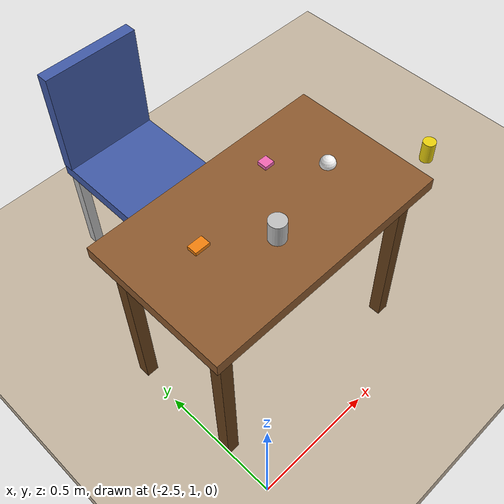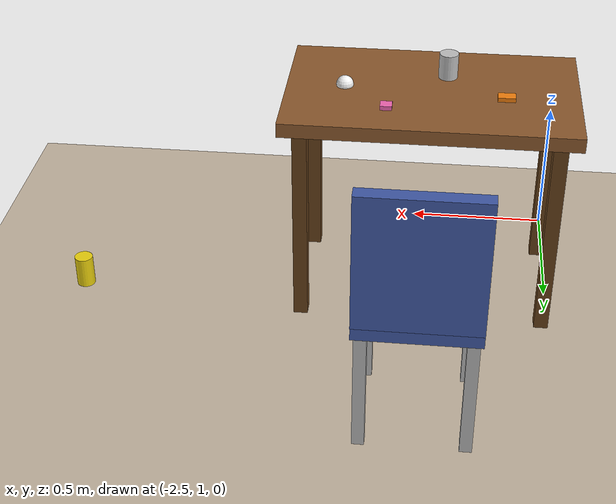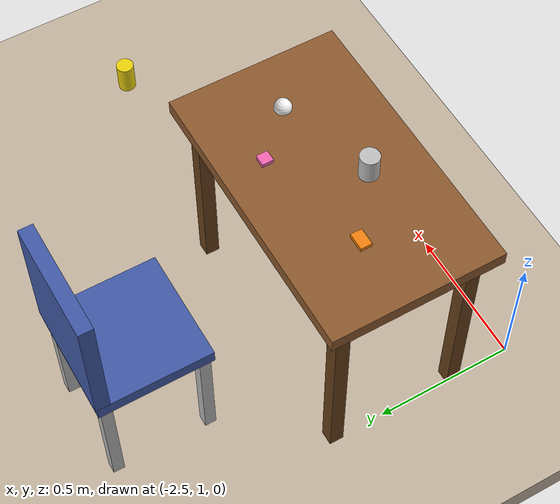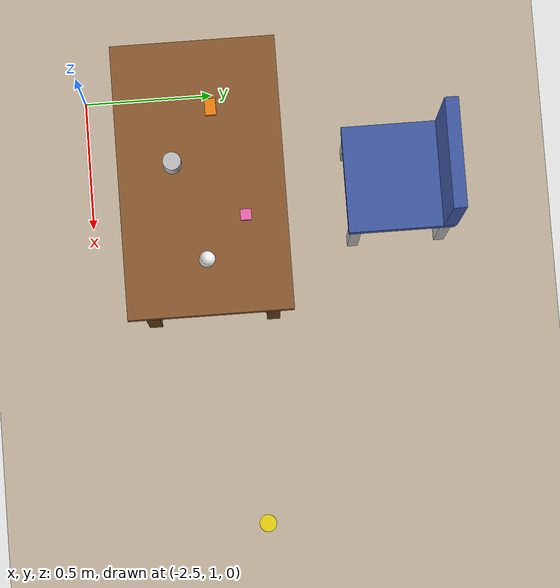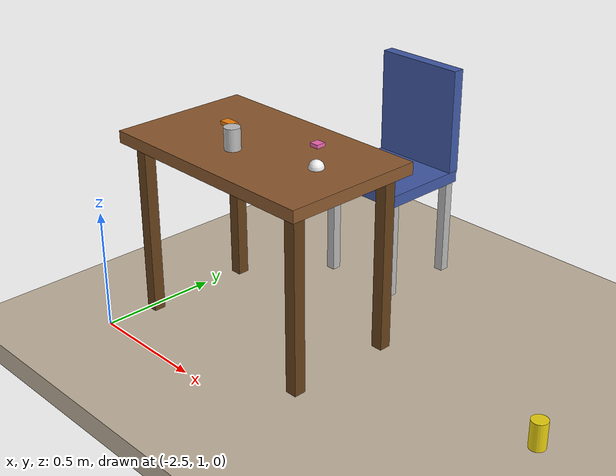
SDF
<sdf version="1.8">
 <world name="home_world">
  <model name="ground_plane">
   <static>true</static>
   <link name="link">
    <collision name="collision">
     <pose>0 0 -0.05 0 0 0</pose>
     <geometry><box><size>12 10 0.1</size></box></geometry>
     <surface>
      <friction><ode><mu>1.0</mu><mu2>1.0</mu2></ode></friction>
      <contact><ode><kp>1000000</kp><kd>100</kd></ode></contact>
     </surface>
    </collision>
    <visual name="visual">
     <pose>0 0 -0.05 0 0 0</pose>
     <geometry><box><size>12 10 0.1</size></box></geometry>
     <material><ambient>0.76 0.70 0.62 1</ambient><diffuse>0.76 0.70 0.62 1</diffuse></material>
    </visual>
   </link>
  </model>
  <model name="table_a">
   <static>true</static>
   <pose>-2.05 1.45 0 0 0 0</pose>
   <link name="link">
    <collision name="top_col">
     <pose>0 0 0.77 0 0 0</pose>
     <geometry><box><size>1.0 0.6 0.05</size></box></geometry>
     <surface><friction><ode><mu>1.0</mu><mu2>1.0</mu2></ode></friction></surface>
    </collision>
    <visual name="top_vis">
     <pose>0 0 0.77 0 0 0</pose>
     <geometry><box><size>1.0 0.6 0.05</size></box></geometry>
     <material><ambient>0.55 0.35 0.18 1</ambient><diffuse>0.55 0.35 0.18 1</diffuse></material>
    </visual>
    <collision name="l1">
     <pose>0.43  0.23 0.375 0 0 0</pose>
     <geometry><box><size>0.05 0.05 0.75</size></box></geometry>
    </collision>
    <visual name="v1">
     <pose>0.43  0.23 0.375 0 0 0</pose>
     <geometry><box><size>0.05 0.05 0.75</size></box></geometry>
     <material><ambient>0.4 0.25 0.1 1</ambient><diffuse>0.4 0.25 0.1 1</diffuse></material>
    </visual>
    <collision name="l2">
     <pose>0.43 -0.23 0.375 0 0 0</pose>
     <geometry><box><size>0.05 0.05 0.75</size></box></geometry>
    </collision>
    <visual name="v2">
     <pose>0.43 -0.23 0.375 0 0 0</pose>
     <geometry><box><size>0.05 0.05 0.75</size></box></geometry>
     <material><ambient>0.4 0.25 0.1 1</ambient><diffuse>0.4 0.25 0.1 1</diffuse></material>
    </visual>
    <collision name="l3">
     <pose>-0.43  0.23 0.375 0 0 0</pose>
     <geometry><box><size>0.05 0.05 0.75</size></box></geometry>
    </collision>
    <visual name="v3">
     <pose>-0.43  0.23 0.375 0 0 0</pose>
     <geometry><box><size>0.05 0.05 0.75</size></box></geometry>
     <material><ambient>0.4 0.25 0.1 1</ambient><diffuse>0.4 0.25 0.1 1</diffuse></material>
    </visual>
    <collision name="l4">
     <pose>-0.43 -0.23 0.375 0 0 0</pose>
     <geometry><box><size>0.05 0.05 0.75</size></box></geometry>
    </collision>
    <visual name="v4">
     <pose>-0.43 -0.23 0.375 0 0 0</pose>
     <geometry><box><size>0.05 0.05 0.75</size></box></geometry>
     <material><ambient>0.4 0.25 0.1 1</ambient><diffuse>0.4 0.25 0.1 1</diffuse></material>
    </visual>
   </link>
  </model>
  <model name="chair_a2">
   <static>true</static>
   <pose>-2.05 2.18 0 0 0 0</pose>
   <link name="link">
    <collision name="s">
     <pose>0 0 0.45 0 0 0</pose>
     <geometry><box><size>0.40 0.40 0.05</size></box></geometry>
    </collision>
    <visual name="sv">
     <pose>0 0 0.45 0 0 0</pose>
     <geometry><box><size>0.40 0.40 0.05</size></box></geometry>
     <material><ambient>0.25 0.35 0.65 1</ambient><diffuse>0.25 0.35 0.65 1</diffuse></material>
    </visual>
    <collision name="b">
     <pose>0 0.18 0.70 0 0 0</pose>
     <geometry><box><size>0.40 0.05 0.46</size></box></geometry>
    </collision>
    <visual name="bv">
     <pose>0 0.18 0.70 0 0 0</pose>
     <geometry><box><size>0.40 0.05 0.46</size></box></geometry>
     <material><ambient>0.25 0.35 0.65 1</ambient><diffuse>0.25 0.35 0.65 1</diffuse></material>
    </visual>
    <collision name="l1">
     <pose>0.17  0.17 0.22 0 0 0</pose>
     <geometry><box><size>0.04 0.04 0.44</size></box></geometry>
    </collision>
    <visual name="lv1">
     <pose>0.17  0.17 0.22 0 0 0</pose>
     <geometry><box><size>0.04 0.04 0.44</size></box></geometry>
    </visual>
    <collision name="l2">
     <pose>-0.17  0.17 0.22 0 0 0</pose>
     <geometry><box><size>0.04 0.04 0.44</size></box></geometry>
    </collision>
    <visual name="lv2">
     <pose>-0.17  0.17 0.22 0 0 0</pose>
     <geometry><box><size>0.04 0.04 0.44</size></box></geometry>
    </visual>
    <collision name="l3">
     <pose>0.17 -0.17 0.22 0 0 0</pose>
     <geometry><box><size>0.04 0.04 0.44</size></box></geometry>
    </collision>
    <visual name="lv3">
     <pose>0.17 -0.17 0.22 0 0 0</pose>
     <geometry><box><size>0.04 0.04 0.44</size></box></geometry>
    </visual>
    <collision name="l4">
     <pose>-0.17 -0.17 0.22 0 0 0</pose>
     <geometry><box><size>0.04 0.04 0.44</size></box></geometry>
    </collision>
    <visual name="lv4">
     <pose>-0.17 -0.17 0.22 0 0 0</pose>
     <geometry><box><size>0.04 0.04 0.44</size></box></geometry>
    </visual>
   </link>
  </model>
  <model name="floor_a_can_yellow">
   <static>false</static>
   <pose>-0.8 1.6 0.0575 0 0 0</pose>
   <link name="link">
    <inertial>
     <mass>0.18</mass>
     <inertia>
      <ixx>0.000143</ixx>
      <iyy>0.000143</iyy>
      <izz>0.000098</izz>
      <ixy>0</ixy>
      <ixz>0</ixz>
      <iyz>0</iyz>
     </inertia>
    </inertial>
    <collision name="col">
     <geometry><cylinder><radius>0.033</radius><length>0.115</length></cylinder></geometry>
     <surface>
      <friction><ode><mu>0.6</mu><mu2>0.6</mu2></ode></friction>
      <contact><ode><kp>500000</kp><kd>10</kd><min_depth>0.001</min_depth><max_vel>0.1</max_vel></ode></contact>
      <bounce><restitution_coefficient>0.0</restitution_coefficient><threshold>100000</threshold></bounce>
     </surface>
    </collision>
    <visual name="vis">
     <geometry><cylinder><radius>0.033</radius><length>0.115</length></cylinder></geometry>
     <material><ambient>0.92 0.82 0.05 1</ambient><diffuse>0.92 0.82 0.05 1</diffuse></material>
    </visual>
   </link>
  </model>
  <model name="ta_block_orange">
   <static>false</static>
   <pose>-2.3 1.50 0.790 0 0 0</pose>
   <link name="link">
    <inertial>
     <mass>0.18</mass>
     <inertia>
      <ixx>0.000080</ixx>
      <iyy>0.000080</iyy>
      <izz>0.000060</izz>
      <ixy>0</ixy>
      <ixz>0</ixz>
      <iyz>0</iyz>
     </inertia>
    </inertial>
    <collision name="col">
     <geometry><box><size>0.06 0.04 0.04</size></box></geometry>
     <surface>
      <friction><ode><mu>0.6</mu><mu2>0.6</mu2></ode></friction>
      <contact><ode><kp>500000</kp><kd>10</kd><min_depth>0.001</min_depth><max_vel>0.1</max_vel></ode></contact>
      <bounce><restitution_coefficient>0.0</restitution_coefficient><threshold>100000</threshold></bounce>
     </surface>
    </collision>
    <visual name="vis">
     <geometry><box><size>0.06 0.04 0.04</size></box></geometry>
     <material><ambient>0.95 0.50 0.05 1</ambient><diffuse>0.95 0.50 0.05 1</diffuse></material>
    </visual>
   </link>
  </model>
  <model name="ta_block_pink">
   <static>false</static>
   <pose>-1.90 1.60 0.790 0 0 0</pose>
   <link name="link">
    <inertial>
     <mass>0.12</mass>
     <inertia>
      <ixx>0.000032</ixx>
      <iyy>0.000032</iyy>
      <izz>0.000032</izz>
      <ixy>0</ixy>
      <ixz>0</ixz>
      <iyz>0</iyz>
     </inertia>
    </inertial>
    <collision name="col">
     <geometry><box><size>0.04 0.04 0.04</size></box></geometry>
     <surface>
      <friction><ode><mu>0.6</mu><mu2>0.6</mu2></ode></friction>
      <contact><ode><kp>500000</kp><kd>10</kd><min_depth>0.001</min_depth><max_vel>0.1</max_vel></ode></contact>
      <bounce><restitution_coefficient>0.0</restitution_coefficient><threshold>100000</threshold></bounce>
     </surface>
    </collision>
    <visual name="vis">
     <geometry><box><size>0.04 0.04 0.04</size></box></geometry>
     <material><ambient>0.95 0.40 0.70 1</ambient><diffuse>0.95 0.40 0.70 1</diffuse></material>
    </visual>
   </link>
  </model>
  <model name="ta_can_silver">
   <static>false</static>
   <pose>-2.10 1.35 0.8275 0 0 0</pose>
   <link name="link">
    <inertial>
     <mass>0.18</mass>
     <inertia>
      <ixx>0.000143</ixx>
      <iyy>0.000143</iyy>
      <izz>0.000098</izz>
      <ixy>0</ixy>
      <ixz>0</ixz>
      <iyz>0</iyz>
     </inertia>
    </inertial>
    <collision name="col">
     <geometry><cylinder><radius>0.033</radius><length>0.115</length></cylinder></geometry>
     <surface>
      <friction><ode><mu>0.6</mu><mu2>0.6</mu2></ode></friction>
      <contact><ode><kp>500000</kp><kd>10</kd><min_depth>0.001</min_depth><max_vel>0.1</max_vel></ode></contact>
      <bounce><restitution_coefficient>0.0</restitution_coefficient><threshold>100000</threshold></bounce>
     </surface>
    </collision>
    <visual name="vis">
     <geometry><cylinder><radius>0.033</radius><length>0.115</length></cylinder></geometry>
     <material><ambient>0.75 0.75 0.75 1</ambient><diffuse>0.75 0.75 0.75 1</diffuse></material>
    </visual>
   </link>
  </model>
  <model name="ta_ball_white">
   <static>false</static>
   <pose>-1.75 1.45 0.800 0 0 0</pose>
   <link name="link">
    <inertial>
     <mass>0.08</mass>
     <inertia>
      <ixx>0.0000288</ixx>
      <iyy>0.0000288</iyy>
      <izz>0.0000288</izz>
      <ixy>0</ixy>
      <ixz>0</ixz>
      <iyz>0</iyz>
     </inertia>
    </inertial>
    <collision name="col">
     <geometry><sphere><radius>0.030</radius></sphere></geometry>
     <surface>
      <friction><ode><mu>0.6</mu><mu2>0.6</mu2></ode></friction>
      <contact><ode><kp>500000</kp><kd>10</kd><min_depth>0.001</min_depth><max_vel>0.1</max_vel></ode></contact>
      <bounce><restitution_coefficient>0.0</restitution_coefficient><threshold>100000</threshold></bounce>
     </surface>
    </collision>
    <visual name="vis">
     <geometry><sphere><radius>0.030</radius></sphere></geometry>
     <material><ambient>0.95 0.95 0.95 1</ambient><diffuse>0.95 0.95 0.95 1</diffuse></material>
    </visual>
   </link>
  </model>
 </world>
</sdf>
